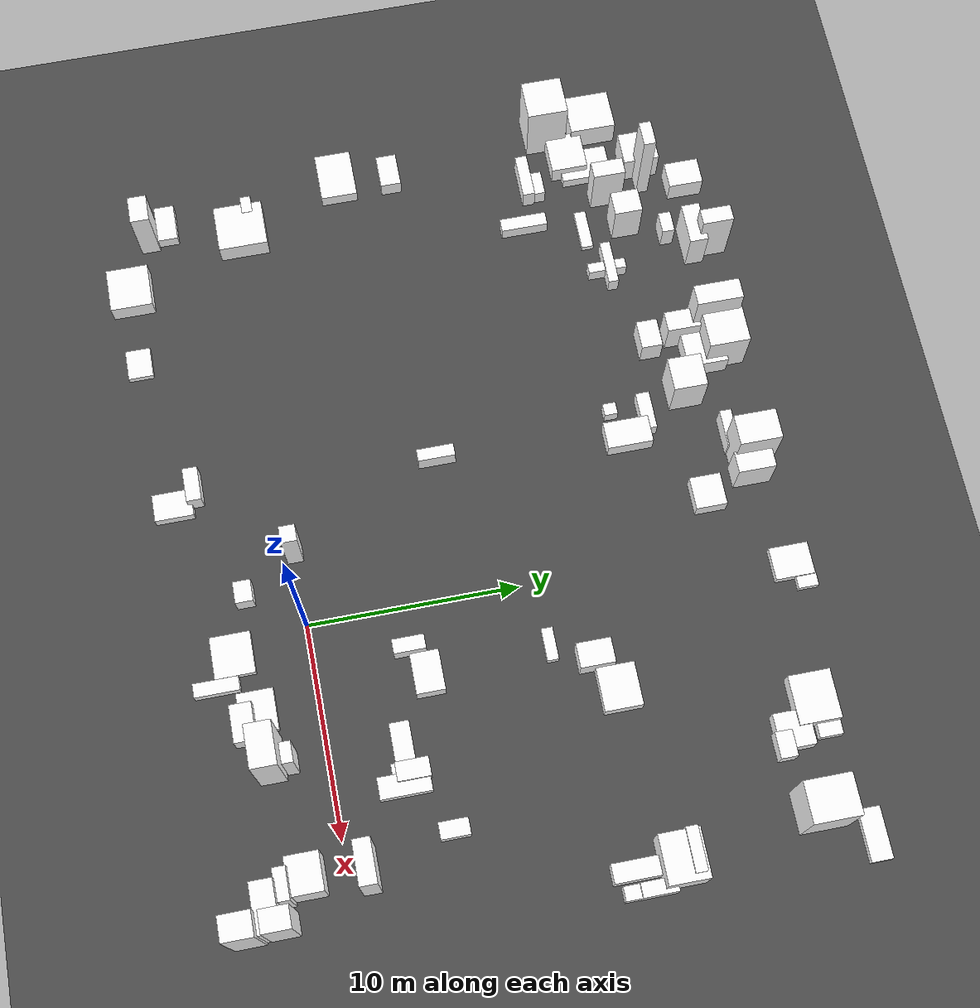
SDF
<sdf version="1.6">
 <world name="mirror_edge_world">
  <model name="ground_plane">
   <static>true</static>
   <link name="link">
    <collision name="collision">
     <geometry><plane><normal>0 0 1</normal><size>100 100</size></plane></geometry>
    </collision>
    <visual name="visual">
     <geometry><plane><normal>0 0 1</normal><size>100 100</size></plane></geometry>
     <material>
      <ambient>0.3 0.3 0.3 1</ambient>
      <diffuse>0.3 0.3 0.3 1</diffuse>
      <specular>0.5 0.5 0.5 1</specular>
      <emissive>0 0 0 1</emissive>
     </material>
    </visual>
   </link>
  </model>
  <model name="block_7_58">
   <static>true</static>
   <link name="link">
    <pose>-21.06033015444244 17.538761978867644 0.30326687604345337 0 0 0</pose>
    <collision name="collision">
     <geometry><box><size>1.625759995244621 2.465322731743232 0.6065337520869067</size></box></geometry>
    </collision>
    <visual name="visual">
     <geometry><box><size>1.625759995244621 2.465322731743232 0.6065337520869067</size></box></geometry>
     <material>
      <ambient>1 1 1 1</ambient>
      <diffuse>1 1 1 1</diffuse>
      <specular>0.9 0.9 0.9 1</specular>
      <emissive>0.05 0.05 0.05 1</emissive>
     </material>
    </visual>
   </link>
  </model>
  <model name="block_7_59">
   <static>true</static>
   <link name="link">
    <pose>-17.54556980583513 16.778838221154363 0.16070350677983264 0 0 0</pose>
    <collision name="collision">
     <geometry><box><size>1.9770694206053288 0.587388655172201 0.3214070135596653</size></box></geometry>
    </collision>
    <visual name="visual">
     <geometry><box><size>1.9770694206053288 0.587388655172201 0.3214070135596653</size></box></geometry>
     <material>
      <ambient>1 1 1 1</ambient>
      <diffuse>1 1 1 1</diffuse>
      <specular>0.9 0.9 0.9 1</specular>
      <emissive>0.05 0.05 0.05 1</emissive>
     </material>
    </visual>
   </link>
  </model>
  <model name="block_7_60">
   <static>true</static>
   <link name="link">
    <pose>-7.669405933741203 15.940293748282553 0.35034346247233045 0 0 0</pose>
    <collision name="collision">
     <geometry><box><size>0.5889284305780462 0.6428876410037321 0.7006869249446609</size></box></geometry>
    </collision>
    <visual name="visual">
     <geometry><box><size>0.5889284305780462 0.6428876410037321 0.7006869249446609</size></box></geometry>
     <material>
      <ambient>1 1 1 1</ambient>
      <diffuse>1 1 1 1</diffuse>
      <specular>0.9 0.9 0.9 1</specular>
      <emissive>0.05 0.05 0.05 1</emissive>
     </material>
    </visual>
   </link>
  </model>
  <model name="block_7_63">
   <static>true</static>
   <link name="link">
    <pose>2.1642172536936606 -4.45934224629622 0.2755101531138549 0 0 0</pose>
    <collision name="collision">
     <geometry><box><size>0.6607351352444912 2.1154882367631944 0.5510203062277098</size></box></geometry>
    </collision>
    <visual name="visual">
     <geometry><box><size>0.6607351352444912 2.1154882367631944 0.5510203062277098</size></box></geometry>
     <material>
      <ambient>1 1 1 1</ambient>
      <diffuse>1 1 1 1</diffuse>
      <specular>0.9 0.9 0.9 1</specular>
      <emissive>0.05 0.05 0.05 1</emissive>
     </material>
    </visual>
   </link>
  </model>
  <model name="block_7_67">
   <static>true</static>
   <link name="link">
    <pose>-22.706257825958794 5.064450942348505 0.3625480376320364 0 0 0</pose>
    <collision name="collision">
     <geometry><box><size>2.4138749498047227 1.7877520135115028 0.7250960752640728</size></box></geometry>
    </collision>
    <visual name="visual">
     <geometry><box><size>2.4138749498047227 1.7877520135115028 0.7250960752640728</size></box></geometry>
     <material>
      <ambient>1 1 1 1</ambient>
      <diffuse>1 1 1 1</diffuse>
      <specular>0.9 0.9 0.9 1</specular>
      <emissive>0.05 0.05 0.05 1</emissive>
     </material>
    </visual>
   </link>
  </model>
  <model name="block_8_0">
   <static>true</static>
   <link name="link">
    <pose>-5.485888372541005 21.215658091720208 0.6108630066761713 0 0 0</pose>
    <collision name="collision">
     <geometry><box><size>1.7844493487869804 0.5661374900316696 1.2217260133523427</size></box></geometry>
    </collision>
    <visual name="visual">
     <geometry><box><size>1.7844493487869804 0.5661374900316696 1.2217260133523427</size></box></geometry>
     <material>
      <ambient>1 1 1 1</ambient>
      <diffuse>1 1 1 1</diffuse>
      <specular>0.9 0.9 0.9 1</specular>
      <emissive>0.05 0.05 0.05 1</emissive>
     </material>
    </visual>
   </link>
  </model>
  <model name="block_8_1">
   <static>true</static>
   <link name="link">
    <pose>-21.649493365372386 0.4020498165986348 0.5749776957854156 0 0 0</pose>
    <collision name="collision">
     <geometry><box><size>0.87913171793895 0.5190295024334055 1.1499553915708312</size></box></geometry>
    </collision>
    <visual name="visual">
     <geometry><box><size>0.87913171793895 0.5190295024334055 1.1499553915708312</size></box></geometry>
     <material>
      <ambient>1 1 1 1</ambient>
      <diffuse>1 1 1 1</diffuse>
      <specular>0.9 0.9 0.9 1</specular>
      <emissive>0.05 0.05 0.05 1</emissive>
     </material>
    </visual>
   </link>
  </model>
  <model name="block_8_3">
   <static>true</static>
   <link name="link">
    <pose>-1.8960455958263935 -2.6005982305035884 0.5403726390003059 0 0 0</pose>
    <visual name="visual">
     <geometry><box><size>1.0254777180060313 0.8351032950524118 1.0807452780006117</size></box></geometry>
     <material>
      <ambient>1 1 1 1</ambient>
      <diffuse>1 1 1 1</diffuse>
      <specular>0.9 0.9 0.9 1</specular>
      <emissive>0.05 0.05 0.05 1</emissive>
     </material>
    </visual>
   </link>
  </model>
  <model name="block_8_4">
   <static>true</static>
   <link name="link">
    <pose>-21.643161435269956 -3.7111936031332102 0.32862811347240045 0 0 0</pose>
    <collision name="collision">
     <geometry><box><size>1.8483887764964249 0.9818259915492058 0.6572562269448009</size></box></geometry>
    </collision>
    <visual name="visual">
     <geometry><box><size>1.8483887764964249 0.9818259915492058 0.6572562269448009</size></box></geometry>
     <material>
      <ambient>1 1 1 1</ambient>
      <diffuse>1 1 1 1</diffuse>
      <specular>0.9 0.9 0.9 1</specular>
      <emissive>0.05 0.05 0.05 1</emissive>
     </material>
    </visual>
   </link>
  </model>
  <model name="block_8_5">
   <static>true</static>
   <link name="link">
    <pose>-19.252084735899473 18.21147990374171 1.5005602533736642 0 0 0</pose>
    <visual name="visual">
     <geometry><box><size>0.8143111147488564 1.5664697118280084 3.0011205067473283</size></box></geometry>
     <material>
      <ambient>1 1 1 1</ambient>
      <diffuse>1 1 1 1</diffuse>
      <specular>0.9 0.9 0.9 1</specular>
      <emissive>0.05 0.05 0.05 1</emissive>
     </material>
    </visual>
   </link>
  </model>
  <model name="block_8_8">
   <static>true</static>
   <link name="link">
    <pose>13.690819968363108 12.394343897673966 0.48807796789400304 0 0 0</pose>
    <collision name="collision">
     <geometry><box><size>0.8806580749273953 2.1317734749460695 0.9761559357880061</size></box></geometry>
    </collision>
    <visual name="visual">
     <geometry><box><size>0.8806580749273953 2.1317734749460695 0.9761559357880061</size></box></geometry>
     <material>
      <ambient>1 1 1 1</ambient>
      <diffuse>1 1 1 1</diffuse>
      <specular>0.9 0.9 0.9 1</specular>
      <emissive>0.05 0.05 0.05 1</emissive>
     </material>
    </visual>
   </link>
  </model>
  <model name="block_8_10">
   <static>true</static>
   <link name="link">
    <pose>-18.24826291678652 -5.878224167834446 0.5172888985266836 0 0 0</pose>
    <collision name="collision">
     <geometry><box><size>2.148880079933841 2.037355667564259 1.0345777970533672</size></box></geometry>
    </collision>
    <visual name="visual">
     <geometry><box><size>2.148880079933841 2.037355667564259 1.0345777970533672</size></box></geometry>
     <material>
      <ambient>1 1 1 1</ambient>
      <diffuse>1 1 1 1</diffuse>
      <specular>0.9 0.9 0.9 1</specular>
      <emissive>0.05 0.05 0.05 1</emissive>
     </material>
    </visual>
   </link>
  </model>
  <model name="block_8_11">
   <static>true</static>
   <link name="link">
    <pose>1.9451715587201655 4.449499501191025 0.4916832636157151 0 0 0</pose>
    <collision name="collision">
     <geometry><box><size>0.6833057593792504 1.5071934225685681 0.9833665272314303</size></box></geometry>
    </collision>
    <visual name="visual">
     <geometry><box><size>0.6833057593792504 1.5071934225685681 0.9833665272314303</size></box></geometry>
     <material>
      <ambient>1 1 1 1</ambient>
      <diffuse>1 1 1 1</diffuse>
      <specular>0.9 0.9 0.9 1</specular>
      <emissive>0.05 0.05 0.05 1</emissive>
     </material>
    </visual>
   </link>
  </model>
  <model name="block_8_15">
   <static>true</static>
   <link name="link">
    <pose>11.632121085247498 -2.66321434282354 1.5192065809641735 0 0 0</pose>
    <visual name="visual">
     <geometry><box><size>1.4592254457904492 0.5979256075772408 3.038413161928347</size></box></geometry>
     <material>
      <ambient>1 1 1 1</ambient>
      <diffuse>1 1 1 1</diffuse>
      <specular>0.9 0.9 0.9 1</specular>
      <emissive>0.05 0.05 0.05 1</emissive>
     </material>
    </visual>
   </link>
  </model>
  <model name="block_8_17">
   <static>true</static>
   <link name="link">
    <pose>9.012475234084398 20.690138188811236 0.45767277984421556 0 0 0</pose>
    <collision name="collision">
     <geometry><box><size>1.6594881844428953 1.6644331855509857 0.9153455596884311</size></box></geometry>
    </collision>
    <visual name="visual">
     <geometry><box><size>1.6594881844428953 1.6644331855509857 0.9153455596884311</size></box></geometry>
     <material>
      <ambient>1 1 1 1</ambient>
      <diffuse>1 1 1 1</diffuse>
      <specular>0.9 0.9 0.9 1</specular>
      <emissive>0.05 0.05 0.05 1</emissive>
     </material>
    </visual>
   </link>
  </model>
  <model name="block_8_23">
   <static>true</static>
   <link name="link">
    <pose>5.8938863468807945 -2.541279151656743 2.1555441233243493 0 0 0</pose>
    <visual name="visual">
     <geometry><box><size>1.9798583183179086 1.2147518033663975 4.311088246648699</size></box></geometry>
     <material>
      <ambient>1 1 1 1</ambient>
      <diffuse>1 1 1 1</diffuse>
      <specular>0.9 0.9 0.9 1</specular>
      <emissive>0.05 0.05 0.05 1</emissive>
     </material>
    </visual>
   </link>
  </model>
  <model name="block_8_27">
   <static>true</static>
   <link name="link">
    <pose>-14.432502479720927 -5.9673783320563185 0.1745769628918153 0 0 0</pose>
    <collision name="collision">
     <geometry><box><size>1.4811945962077728 1.2058707055097988 0.3491539257836306</size></box></geometry>
    </collision>
    <visual name="visual">
     <geometry><box><size>1.4811945962077728 1.2058707055097988 0.3491539257836306</size></box></geometry>
     <material>
      <ambient>1 1 1 1</ambient>
      <diffuse>1 1 1 1</diffuse>
      <specular>0.9 0.9 0.9 1</specular>
      <emissive>0.05 0.05 0.05 1</emissive>
     </material>
    </visual>
   </link>
  </model>
  <model name="block_8_28">
   <static>true</static>
   <link name="link">
    <pose>-19.2467030944887 22.20087099062626 0.6251450495342434 0 0 0</pose>
    <visual name="visual">
     <geometry><box><size>1.2963307791894223 1.6930579849886667 1.2502900990684869</size></box></geometry>
     <material>
      <ambient>1 1 1 1</ambient>
      <diffuse>1 1 1 1</diffuse>
      <specular>0.9 0.9 0.9 1</specular>
      <emissive>0.05 0.05 0.05 1</emissive>
     </material>
    </visual>
   </link>
  </model>
  <model name="block_8_29">
   <static>true</static>
   <link name="link">
    <pose>7.784164892695522 21.926548429066408 0.5044337039867912 0 0 0</pose>
    <collision name="collision">
     <geometry><box><size>2.280004355772046 1.9751167446071713 1.0088674079735824</size></box></geometry>
    </collision>
    <visual name="visual">
     <geometry><box><size>2.280004355772046 1.9751167446071713 1.0088674079735824</size></box></geometry>
     <material>
      <ambient>1 1 1 1</ambient>
      <diffuse>1 1 1 1</diffuse>
      <specular>0.9 0.9 0.9 1</specular>
      <emissive>0.05 0.05 0.05 1</emissive>
     </material>
    </visual>
   </link>
  </model>
  <model name="block_8_30">
   <static>true</static>
   <link name="link">
    <pose>-11.069714582900877 20.406546609452754 0.9891097047203592 0 0 0</pose>
    <visual name="visual">
     <geometry><box><size>0.9796224567633678 2.117654472166089 1.9782194094407184</size></box></geometry>
     <material>
      <ambient>1 1 1 1</ambient>
      <diffuse>1 1 1 1</diffuse>
      <specular>0.9 0.9 0.9 1</specular>
      <emissive>0.05 0.05 0.05 1</emissive>
     </material>
    </visual>
   </link>
  </model>
  <model name="block_8_34">
   <static>true</static>
   <link name="link">
    <pose>-7.509873199890368 -4.207662219200295 0.5540104491527843 0 0 0</pose>
    <collision name="collision">
     <geometry><box><size>1.6396552518474417 0.7114151318447643 1.1080208983055686</size></box></geometry>
    </collision>
    <visual name="visual">
     <geometry><box><size>1.6396552518474417 0.7114151318447643 1.1080208983055686</size></box></geometry>
     <material>
      <ambient>1 1 1 1</ambient>
      <diffuse>1 1 1 1</diffuse>
      <specular>0.9 0.9 0.9 1</specular>
      <emissive>0.05 0.05 0.05 1</emissive>
     </material>
    </visual>
   </link>
  </model>
  <model name="block_8_35">
   <static>true</static>
   <link name="link">
    <pose>-8.122387738784232 19.637903710030205 1.277889011438748 0 0 0</pose>
    <visual name="visual">
     <geometry><box><size>1.5923638940581095 1.6093378728764394 2.555778022877496</size></box></geometry>
     <material>
      <ambient>1 1 1 1</ambient>
      <diffuse>1 1 1 1</diffuse>
      <specular>0.9 0.9 0.9 1</specular>
      <emissive>0.05 0.05 0.05 1</emissive>
     </material>
    </visual>
   </link>
  </model>
  <model name="block_8_36">
   <static>true</static>
   <link name="link">
    <pose>12.568926084111695 21.006934392753006 1.666573284462865 0 0 0</pose>
    <visual name="visual">
     <geometry><box><size>1.8944820660966828 2.2121701912064107 3.33314656892573</size></box></geometry>
     <material>
      <ambient>1 1 1 1</ambient>
      <diffuse>1 1 1 1</diffuse>
      <specular>0.9 0.9 0.9 1</specular>
      <emissive>0.05 0.05 0.05 1</emissive>
     </material>
    </visual>
   </link>
  </model>
  <model name="block_8_41">
   <static>true</static>
   <link name="link">
    <pose>5.6245105619244775 13.456336522306419 0.38488391330447835 0 0 0</pose>
    <collision name="collision">
     <geometry><box><size>2.039627520463922 1.7941435145136047 0.7697678266089567</size></box></geometry>
    </collision>
    <visual name="visual">
     <geometry><box><size>2.039627520463922 1.7941435145136047 0.7697678266089567</size></box></geometry>
     <material>
      <ambient>1 1 1 1</ambient>
      <diffuse>1 1 1 1</diffuse>
      <specular>0.9 0.9 0.9 1</specular>
      <emissive>0.05 0.05 0.05 1</emissive>
     </material>
    </visual>
   </link>
  </model>
  <model name="block_8_42">
   <static>true</static>
   <link name="link">
    <pose>-20.25944231408279 14.710194722609511 0.43335585468428806 0 0 0</pose>
    <collision name="collision">
     <geometry><box><size>1.1963487594479827 1.046161536967404 0.8667117093685761</size></box></geometry>
    </collision>
    <visual name="visual">
     <geometry><box><size>1.1963487594479827 1.046161536967404 0.8667117093685761</size></box></geometry>
     <material>
      <ambient>1 1 1 1</ambient>
      <diffuse>1 1 1 1</diffuse>
      <specular>0.9 0.9 0.9 1</specular>
      <emissive>0.05 0.05 0.05 1</emissive>
     </material>
    </visual>
   </link>
  </model>
  <model name="block_8_45">
   <static>true</static>
   <link name="link">
    <pose>-23.40757959066265 15.855775784747127 1.7762809573178322 0 0 0</pose>
    <visual name="visual">
     <geometry><box><size>1.9178841146537429 1.975500494224201 3.5525619146356644</size></box></geometry>
     <material>
      <ambient>1 1 1 1</ambient>
      <diffuse>1 1 1 1</diffuse>
      <specular>0.9 0.9 0.9 1</specular>
      <emissive>0.05 0.05 0.05 1</emissive>
     </material>
    </visual>
   </link>
  </model>
  <model name="block_8_48">
   <static>true</static>
   <link name="link">
    <pose>-10.210310827539596 21.944628525498466 1.3626621839237925 0 0 0</pose>
    <visual name="visual">
     <geometry><box><size>2.187808467181866 1.9532263401332095 2.725324367847585</size></box></geometry>
     <material>
      <ambient>1 1 1 1</ambient>
      <diffuse>1 1 1 1</diffuse>
      <specular>0.9 0.9 0.9 1</specular>
      <emissive>0.05 0.05 0.05 1</emissive>
     </material>
    </visual>
   </link>
  </model>
  <model name="block_8_49">
   <static>true</static>
   <link name="link">
    <pose>12.493530303949143 -3.4262609333491274 1.8390410464955023 0 0 0</pose>
    <visual name="visual">
     <geometry><box><size>2.255088863141582 1.0362016002893404 3.6780820929910045</size></box></geometry>
     <material>
      <ambient>1 1 1 1</ambient>
      <diffuse>1 1 1 1</diffuse>
      <specular>0.9 0.9 0.9 1</specular>
      <emissive>0.05 0.05 0.05 1</emissive>
     </material>
    </visual>
   </link>
  </model>
  <model name="block_8_53">
   <static>true</static>
   <link name="link">
    <pose>-22.37256495231459 7.712657714453813 0.45137555928786166 0 0 0</pose>
    <collision name="collision">
     <geometry><box><size>1.6561676868941337 1.0074526232026475 0.9027511185757233</size></box></geometry>
    </collision>
    <visual name="visual">
     <geometry><box><size>1.6561676868941337 1.0074526232026475 0.9027511185757233</size></box></geometry>
     <material>
      <ambient>1 1 1 1</ambient>
      <diffuse>1 1 1 1</diffuse>
      <specular>0.9 0.9 0.9 1</specular>
      <emissive>0.05 0.05 0.05 1</emissive>
     </material>
    </visual>
   </link>
  </model>
  <model name="block_8_60">
   <static>true</static>
   <link name="link">
    <pose>-19.853715996721387 20.16666092623289 2.30588062812018 0 0 0</pose>
    <visual name="visual">
     <geometry><box><size>1.2196905358201713 0.5900951832285746 4.61176125624036</size></box></geometry>
     <material>
      <ambient>1 1 1 1</ambient>
      <diffuse>1 1 1 1</diffuse>
      <specular>0.9 0.9 0.9 1</specular>
      <emissive>0.05 0.05 0.05 1</emissive>
     </material>
    </visual>
   </link>
  </model>
  <model name="block_8_62">
   <static>true</static>
   <link name="link">
    <pose>-15.824314411174466 21.832036897695044 1.2054966897933517 0 0 0</pose>
    <visual name="visual">
     <geometry><box><size>1.9921573680789155 0.8953136790336251 2.4109933795867033</size></box></geometry>
     <material>
      <ambient>1 1 1 1</ambient>
      <diffuse>1 1 1 1</diffuse>
      <specular>0.9 0.9 0.9 1</specular>
      <emissive>0.05 0.05 0.05 1</emissive>
     </material>
    </visual>
   </link>
  </model>
  <model name="block_8_63">
   <static>true</static>
   <link name="link">
    <pose>6.161341260333337 -1.620307948218234 1.464227837142192 0 0 0</pose>
    <visual name="visual">
     <geometry><box><size>0.9551283524774847 0.529516989538271 2.928455674284384</size></box></geometry>
     <material>
      <ambient>1 1 1 1</ambient>
      <diffuse>1 1 1 1</diffuse>
      <specular>0.9 0.9 0.9 1</specular>
      <emissive>0.05 0.05 0.05 1</emissive>
     </material>
    </visual>
   </link>
  </model>
  <model name="block_8_66">
   <static>true</static>
   <link name="link">
    <pose>0.7990621981908781 -3.5550628798473354 0.1971436708561477 0 0 0</pose>
    <collision name="collision">
     <geometry><box><size>1.9810359583652444 1.8982526127127957 0.3942873417122954</size></box></geometry>
    </collision>
    <visual name="visual">
     <geometry><box><size>1.9810359583652444 1.8982526127127957 0.3942873417122954</size></box></geometry>
     <material>
      <ambient>1 1 1 1</ambient>
      <diffuse>1 1 1 1</diffuse>
      <specular>0.9 0.9 0.9 1</specular>
      <emissive>0.05 0.05 0.05 1</emissive>
     </material>
    </visual>
   </link>
  </model>
  <model name="block_9_1">
   <static>true</static>
   <link name="link">
    <pose>8.795254319494255 22.344705648686606 0.26311993233901715 0 0 0</pose>
    <collision name="collision">
     <geometry><box><size>1.5526728795404912 1.0999526453556976 0.5262398646780343</size></box></geometry>
    </collision>
    <visual name="visual">
     <geometry><box><size>1.5526728795404912 1.0999526453556976 0.5262398646780343</size></box></geometry>
     <material>
      <ambient>1 1 1 1</ambient>
      <diffuse>1 1 1 1</diffuse>
      <specular>0.9 0.9 0.9 1</specular>
      <emissive>0.05 0.05 0.05 1</emissive>
     </material>
    </visual>
   </link>
  </model>
  <model name="block_9_2">
   <static>true</static>
   <link name="link">
    <pose>-3.3882118832635726 21.793114301444533 1.0802110427314515 0 0 0</pose>
    <visual name="visual">
     <geometry><box><size>1.0270024517886305 1.7884358004863228 2.160422085462903</size></box></geometry>
     <material>
      <ambient>1 1 1 1</ambient>
      <diffuse>1 1 1 1</diffuse>
      <specular>0.9 0.9 0.9 1</specular>
      <emissive>0.05 0.05 0.05 1</emissive>
     </material>
    </visual>
   </link>
  </model>
  <model name="block_9_3">
   <static>true</static>
   <link name="link">
    <pose>-17.52145422042461 18.787748832034644 1.2560201559063626 0 0 0</pose>
    <visual name="visual">
     <geometry><box><size>1.1796933117631705 1.3603213886051768 2.5120403118127252</size></box></geometry>
     <material>
      <ambient>1 1 1 1</ambient>
      <diffuse>1 1 1 1</diffuse>
      <specular>0.9 0.9 0.9 1</specular>
      <emissive>0.05 0.05 0.05 1</emissive>
     </material>
    </visual>
   </link>
  </model>
  <model name="block_9_4">
   <static>true</static>
   <link name="link">
    <pose>3.0287375114962067 10.791498620200255 0.2188547062758095 0 0 0</pose>
    <collision name="collision">
     <geometry><box><size>1.5329954732136497 0.5483082149359799 0.437709412551619</size></box></geometry>
    </collision>
    <visual name="visual">
     <geometry><box><size>1.5329954732136497 0.5483082149359799 0.437709412551619</size></box></geometry>
     <material>
      <ambient>1 1 1 1</ambient>
      <diffuse>1 1 1 1</diffuse>
      <specular>0.9 0.9 0.9 1</specular>
      <emissive>0.05 0.05 0.05 1</emissive>
     </material>
    </visual>
   </link>
  </model>
  <model name="block_9_6">
   <static>true</static>
   <link name="link">
    <pose>9.607822337478865 20.157454848177434 0.4820802304409663 0 0 0</pose>
    <collision name="collision">
     <geometry><box><size>1.2185851811822306 0.80195119882457 0.9641604608819326</size></box></geometry>
    </collision>
    <visual name="visual">
     <geometry><box><size>1.2185851811822306 0.80195119882457 0.9641604608819326</size></box></geometry>
     <material>
      <ambient>1 1 1 1</ambient>
      <diffuse>1 1 1 1</diffuse>
      <specular>0.9 0.9 0.9 1</specular>
      <emissive>0.05 0.05 0.05 1</emissive>
     </material>
    </visual>
   </link>
  </model>
  <model name="block_9_8">
   <static>true</static>
   <link name="link">
    <pose>4.131260424484395 -3.461636628111319 0.598156865108531 0 0 0</pose>
    <collision name="collision">
     <geometry><box><size>1.7581399634797068 1.0240579549167776 1.196313730217062</size></box></geometry>
    </collision>
    <visual name="visual">
     <geometry><box><size>1.7581399634797068 1.0240579549167776 1.196313730217062</size></box></geometry>
     <material>
      <ambient>1 1 1 1</ambient>
      <diffuse>1 1 1 1</diffuse>
      <specular>0.9 0.9 0.9 1</specular>
      <emissive>0.05 0.05 0.05 1</emissive>
     </material>
    </visual>
   </link>
  </model>
  <model name="block_9_9">
   <static>true</static>
   <link name="link">
    <pose>11.310014054059344 -1.701297496351314 1.1815333082605606 0 0 0</pose>
    <visual name="visual">
     <geometry><box><size>1.758399737030829 1.5531738718242403 2.363066616521121</size></box></geometry>
     <material>
      <ambient>1 1 1 1</ambient>
      <diffuse>1 1 1 1</diffuse>
      <specular>0.9 0.9 0.9 1</specular>
      <emissive>0.05 0.05 0.05 1</emissive>
     </material>
    </visual>
   </link>
  </model>
  <model name="block_9_11">
   <static>true</static>
   <link name="link">
    <pose>13.42125117115836 15.006154935286645 1.0220380379475553 0 0 0</pose>
    <visual name="visual">
     <geometry><box><size>2.0018365439113883 0.5570361147849576 2.0440760758951106</size></box></geometry>
     <material>
      <ambient>1 1 1 1</ambient>
      <diffuse>1 1 1 1</diffuse>
      <specular>0.9 0.9 0.9 1</specular>
      <emissive>0.05 0.05 0.05 1</emissive>
     </material>
    </visual>
   </link>
  </model>
  <model name="block_9_12">
   <static>true</static>
   <link name="link">
    <pose>3.607031637748239 -2.806227222405933 0.2265351247145031 0 0 0</pose>
    <collision name="collision">
     <geometry><box><size>1.9409853458749977 1.7193061883850638 0.4530702494290062</size></box></geometry>
    </collision>
    <visual name="visual">
     <geometry><box><size>1.9409853458749977 1.7193061883850638 0.4530702494290062</size></box></geometry>
     <material>
      <ambient>1 1 1 1</ambient>
      <diffuse>1 1 1 1</diffuse>
      <specular>0.9 0.9 0.9 1</specular>
      <emissive>0.05 0.05 0.05 1</emissive>
     </material>
    </visual>
   </link>
  </model>
  <model name="block_9_16">
   <static>true</static>
   <link name="link">
    <pose>10.42796012242291 4.975568418643287 0.3373067340246085 0 0 0</pose>
    <collision name="collision">
     <geometry><box><size>0.7793622430589353 1.375968392509453 0.674613468049217</size></box></geometry>
    </collision>
    <visual name="visual">
     <geometry><box><size>0.7793622430589353 1.375968392509453 0.674613468049217</size></box></geometry>
     <material>
      <ambient>1 1 1 1</ambient>
      <diffuse>1 1 1 1</diffuse>
      <specular>0.9 0.9 0.9 1</specular>
      <emissive>0.05 0.05 0.05 1</emissive>
     </material>
    </visual>
   </link>
  </model>
  <model name="block_9_17">
   <static>true</static>
   <link name="link">
    <pose>-15.137925842787146 17.418121971931747 0.3910273339716834 0 0 0</pose>
    <collision name="collision">
     <geometry><box><size>0.5022441353853986 1.8788751604698428 0.7820546679433668</size></box></geometry>
    </collision>
    <visual name="visual">
     <geometry><box><size>0.5022441353853986 1.8788751604698428 0.7820546679433668</size></box></geometry>
     <material>
      <ambient>1 1 1 1</ambient>
      <diffuse>1 1 1 1</diffuse>
      <specular>0.9 0.9 0.9 1</specular>
      <emissive>0.05 0.05 0.05 1</emissive>
     </material>
    </visual>
   </link>
  </model>
  <model name="block_9_18">
   <static>true</static>
   <link name="link">
    <pose>-9.873070284891702 21.01416827600062 0.6125335355239034 0 0 0</pose>
    <visual name="visual">
     <geometry><box><size>1.969837307322758 1.979350065324397 1.2250670710478069</size></box></geometry>
     <material>
      <ambient>1 1 1 1</ambient>
      <diffuse>1 1 1 1</diffuse>
      <specular>0.9 0.9 0.9 1</specular>
      <emissive>0.05 0.05 0.05 1</emissive>
     </material>
    </visual>
   </link>
  </model>
  <model name="block_9_19">
   <static>true</static>
   <link name="link">
    <pose>-6.264836219509611 16.490591567970768 0.47191625793849384 0 0 0</pose>
    <collision name="collision">
     <geometry><box><size>1.3038861287787042 2.187035359496642 0.9438325158769877</size></box></geometry>
    </collision>
    <visual name="visual">
     <geometry><box><size>1.3038861287787042 2.187035359496642 0.9438325158769877</size></box></geometry>
     <material>
      <ambient>1 1 1 1</ambient>
      <diffuse>1 1 1 1</diffuse>
      <specular>0.9 0.9 0.9 1</specular>
      <emissive>0.05 0.05 0.05 1</emissive>
     </material>
    </visual>
   </link>
  </model>
  <model name="block_9_20">
   <static>true</static>
   <link name="link">
    <pose>-15.521768147254223 22.730552641283328 1.7094919713556151 0 0 0</pose>
    <visual name="visual">
     <geometry><box><size>0.7742803238661544 1.5091738898433862 3.4189839427112303</size></box></geometry>
     <material>
      <ambient>1 1 1 1</ambient>
      <diffuse>1 1 1 1</diffuse>
      <specular>0.9 0.9 0.9 1</specular>
      <emissive>0.05 0.05 0.05 1</emissive>
     </material>
    </visual>
   </link>
  </model>
  <model name="block_9_23">
   <static>true</static>
   <link name="link">
    <pose>-21.183281076222734 -4.652267140651511 1.634179649603723 0 0 0</pose>
    <visual name="visual">
     <geometry><box><size>1.3336786722270448 0.9081226071462458 3.268359299207446</size></box></geometry>
     <material>
      <ambient>1 1 1 1</ambient>
      <diffuse>1 1 1 1</diffuse>
      <specular>0.9 0.9 0.9 1</specular>
      <emissive>0.05 0.05 0.05 1</emissive>
     </material>
    </visual>
   </link>
  </model>
  <model name="block_9_25">
   <static>true</static>
   <link name="link">
    <pose>-16.6359442566167 20.712320791522025 0.6931138287130623 0 0 0</pose>
    <visual name="visual">
     <geometry><box><size>1.0320343413101511 0.6099758105790254 1.3862276574261245</size></box></geometry>
     <material>
      <ambient>1 1 1 1</ambient>
      <diffuse>1 1 1 1</diffuse>
      <specular>0.9 0.9 0.9 1</specular>
      <emissive>0.05 0.05 0.05 1</emissive>
     </material>
    </visual>
   </link>
  </model>
  <model name="block_9_26">
   <static>true</static>
   <link name="link">
    <pose>-3.515579175528771 -0.035194600354244265 1.6305052402019573 0 0 0</pose>
    <visual name="visual">
     <geometry><box><size>0.7856101348092082 0.7525402903346319 3.2610104804039146</size></box></geometry>
     <material>
      <ambient>1 1 1 1</ambient>
      <diffuse>1 1 1 1</diffuse>
      <specular>0.9 0.9 0.9 1</specular>
      <emissive>0.05 0.05 0.05 1</emissive>
     </material>
    </visual>
   </link>
  </model>
  <model name="block_9_31">
   <static>true</static>
   <link name="link">
    <pose>-7.210479835047547 17.596881758478986 0.4332396528929936 0 0 0</pose>
    <collision name="collision">
     <geometry><box><size>1.838683469953285 0.6650242362247101 0.8664793057859872</size></box></geometry>
    </collision>
    <visual name="visual">
     <geometry><box><size>1.838683469953285 0.6650242362247101 0.8664793057859872</size></box></geometry>
     <material>
      <ambient>1 1 1 1</ambient>
      <diffuse>1 1 1 1</diffuse>
      <specular>0.9 0.9 0.9 1</specular>
      <emissive>0.05 0.05 0.05 1</emissive>
     </material>
    </visual>
   </link>
  </model>
  <model name="block_9_39">
   <static>true</static>
   <link name="link">
    <pose>14.600523855733755 12.146823756390447 0.4034995961836166 0 0 0</pose>
    <collision name="collision">
     <geometry><box><size>0.6541241839590402 0.9554132637175576 0.8069991923672332</size></box></geometry>
    </collision>
    <visual name="visual">
     <geometry><box><size>0.6541241839590402 0.9554132637175576 0.8069991923672332</size></box></geometry>
     <material>
      <ambient>1 1 1 1</ambient>
      <diffuse>1 1 1 1</diffuse>
      <specular>0.9 0.9 0.9 1</specular>
      <emissive>0.05 0.05 0.05 1</emissive>
     </material>
    </visual>
   </link>
  </model>
  <model name="block_9_43">
   <static>true</static>
   <link name="link">
    <pose>7.519573473795742 3.6432126618486036 0.36950287126486314 0 0 0</pose>
    <collision name="collision">
     <geometry><box><size>0.8927130136467349 1.5492962127882008 0.7390057425297263</size></box></geometry>
    </collision>
    <visual name="visual">
     <geometry><box><size>0.8927130136467349 1.5492962127882008 0.7390057425297263</size></box></geometry>
     <material>
      <ambient>1 1 1 1</ambient>
      <diffuse>1 1 1 1</diffuse>
      <specular>0.9 0.9 0.9 1</specular>
      <emissive>0.05 0.05 0.05 1</emissive>
     </material>
    </visual>
   </link>
  </model>
  <model name="block_9_45">
   <static>true</static>
   <link name="link">
    <pose>11.480206617954813 0.9875199901165486 1.9183245093487022 0 0 0</pose>
    <visual name="visual">
     <geometry><box><size>1.9976383233372508 0.8084483507447058 3.8366490186974045</size></box></geometry>
     <material>
      <ambient>1 1 1 1</ambient>
      <diffuse>1 1 1 1</diffuse>
      <specular>0.9 0.9 0.9 1</specular>
      <emissive>0.05 0.05 0.05 1</emissive>
     </material>
    </visual>
   </link>
  </model>
  <model name="block_9_46">
   <static>true</static>
   <link name="link">
    <pose>-20.554784742295432 -0.048110401876945375 0.571192246685492 0 0 0</pose>
    <collision name="collision">
     <geometry><box><size>2.3235435227680896 2.3992145959284623 1.142384493370984</size></box></geometry>
    </collision>
    <visual name="visual">
     <geometry><box><size>2.3235435227680896 2.3992145959284623 1.142384493370984</size></box></geometry>
     <material>
      <ambient>1 1 1 1</ambient>
      <diffuse>1 1 1 1</diffuse>
      <specular>0.9 0.9 0.9 1</specular>
      <emissive>0.05 0.05 0.05 1</emissive>
     </material>
    </visual>
   </link>
  </model>
  <model name="block_9_47">
   <static>true</static>
   <link name="link">
    <pose>-4.479799058185865 21.996065161255427 1.7299983748076209 0 0 0</pose>
    <visual name="visual">
     <geometry><box><size>1.4295452730473013 1.9986904757580486 3.4599967496152417</size></box></geometry>
     <material>
      <ambient>1 1 1 1</ambient>
      <diffuse>1 1 1 1</diffuse>
      <specular>0.9 0.9 0.9 1</specular>
      <emissive>0.05 0.05 0.05 1</emissive>
     </material>
    </visual>
   </link>
  </model>
  <model name="block_9_48">
   <static>true</static>
   <link name="link">
    <pose>-11.280322984374346 21.713202600656544 1.9676354703717864 0 0 0</pose>
    <visual name="visual">
     <geometry><box><size>0.9776061621950891 2.2110988144272063 3.935270940743573</size></box></geometry>
     <material>
      <ambient>1 1 1 1</ambient>
      <diffuse>1 1 1 1</diffuse>
      <specular>0.9 0.9 0.9 1</specular>
      <emissive>0.05 0.05 0.05 1</emissive>
     </material>
    </visual>
   </link>
  </model>
  <model name="block_9_49">
   <static>true</static>
   <link name="link">
    <pose>-10.848242758506963 18.52179452491212 0.7366471097539999 0 0 0</pose>
    <visual name="visual">
     <geometry><box><size>1.3809879726836196 1.0182876663370026 1.4732942195079999</size></box></geometry>
     <material>
      <ambient>1 1 1 1</ambient>
      <diffuse>1 1 1 1</diffuse>
      <specular>0.9 0.9 0.9 1</specular>
      <emissive>0.05 0.05 0.05 1</emissive>
     </material>
    </visual>
   </link>
  </model>
  <model name="block_9_51">
   <static>true</static>
   <link name="link">
    <pose>3.3613601787938627 5.057611019185454 0.47720885695656734 0 0 0</pose>
    <collision name="collision">
     <geometry><box><size>1.895801885033239 1.348735789313494 0.9544177139131347</size></box></geometry>
    </collision>
    <visual name="visual">
     <geometry><box><size>1.895801885033239 1.348735789313494 0.9544177139131347</size></box></geometry>
     <material>
      <ambient>1 1 1 1</ambient>
      <diffuse>1 1 1 1</diffuse>
      <specular>0.9 0.9 0.9 1</specular>
      <emissive>0.05 0.05 0.05 1</emissive>
     </material>
    </visual>
   </link>
  </model>
  <model name="block_9_52">
   <static>true</static>
   <link name="link">
    <pose>8.087632498454589 3.163861858974843 0.28567187527578797 0 0 0</pose>
    <collision name="collision">
     <geometry><box><size>1.0105778761085167 2.3945890017674563 0.5713437505515759</size></box></geometry>
    </collision>
    <visual name="visual">
     <geometry><box><size>1.0105778761085167 2.3945890017674563 0.5713437505515759</size></box></geometry>
     <material>
      <ambient>1 1 1 1</ambient>
      <diffuse>1 1 1 1</diffuse>
      <specular>0.9 0.9 0.9 1</specular>
      <emissive>0.05 0.05 0.05 1</emissive>
     </material>
    </visual>
   </link>
  </model>
  <model name="block_9_53">
   <static>true</static>
   <link name="link">
    <pose>-17.413208919834723 18.819186812713316 1.1638073886984615 0 0 0</pose>
    <visual name="visual">
     <geometry><box><size>0.6526697448986674 0.6679946581366991 2.327614777396923</size></box></geometry>
     <material>
      <ambient>1 1 1 1</ambient>
      <diffuse>1 1 1 1</diffuse>
      <specular>0.9 0.9 0.9 1</specular>
      <emissive>0.05 0.05 0.05 1</emissive>
     </material>
    </visual>
   </link>
  </model>
  <model name="block_9_57">
   <static>true</static>
   <link name="link">
    <pose>1.2785887543536276 22.63427472430037 0.24382504004347821 0 0 0</pose>
    <collision name="collision">
     <geometry><box><size>1.5395474466914532 1.865247604073735 0.48765008008695643</size></box></geometry>
    </collision>
    <visual name="visual">
     <geometry><box><size>1.5395474466914532 1.865247604073735 0.48765008008695643</size></box></geometry>
     <material>
      <ambient>1 1 1 1</ambient>
      <diffuse>1 1 1 1</diffuse>
      <specular>0.9 0.9 0.9 1</specular>
      <emissive>0.05 0.05 0.05 1</emissive>
     </material>
    </visual>
   </link>
  </model>
  <model name="block_9_60">
   <static>true</static>
   <link name="link">
    <pose>-6.820401854950269 -5.277298304805146 0.2908105334496619 0 0 0</pose>
    <collision name="collision">
     <geometry><box><size>1.3077707439794806 1.8407435978605646 0.5816210668993238</size></box></geometry>
    </collision>
    <visual name="visual">
     <geometry><box><size>1.3077707439794806 1.8407435978605646 0.5816210668993238</size></box></geometry>
     <material>
      <ambient>1 1 1 1</ambient>
      <diffuse>1 1 1 1</diffuse>
      <specular>0.9 0.9 0.9 1</specular>
      <emissive>0.05 0.05 0.05 1</emissive>
     </material>
    </visual>
   </link>
  </model>
  <model name="block_9_64">
   <static>true</static>
   <link name="link">
    <pose>-15.233936077261575 17.54576682072748 0.4730124987868212 0 0 0</pose>
    <collision name="collision">
     <geometry><box><size>2.169103737133418 0.5014093862955706 0.9460249975736424</size></box></geometry>
    </collision>
    <visual name="visual">
     <geometry><box><size>2.169103737133418 0.5014093862955706 0.9460249975736424</size></box></geometry>
     <material>
      <ambient>1 1 1 1</ambient>
      <diffuse>1 1 1 1</diffuse>
      <specular>0.9 0.9 0.9 1</specular>
      <emissive>0.05 0.05 0.05 1</emissive>
     </material>
    </visual>
   </link>
  </model>
  <model name="block_9_66">
   <static>true</static>
   <link name="link">
    <pose>13.120023327937552 -3.0166084248961518 2.08848325698992 0 0 0</pose>
    <visual name="visual">
     <geometry><box><size>1.026500909814485 1.3205570725040954 4.17696651397984</size></box></geometry>
     <material>
      <ambient>1 1 1 1</ambient>
      <diffuse>1 1 1 1</diffuse>
      <specular>0.9 0.9 0.9 1</specular>
      <emissive>0.05 0.05 0.05 1</emissive>
     </material>
    </visual>
   </link>
  </model>
  <model name="block_9_67">
   <static>true</static>
   <link name="link">
    <pose>-23.433398088149755 18.25683515679576 0.7433193249861456 0 0 0</pose>
    <visual name="visual">
     <geometry><box><size>1.9750138689111767 2.2447318717807647 1.4866386499722912</size></box></geometry>
     <material>
      <ambient>1 1 1 1</ambient>
      <diffuse>1 1 1 1</diffuse>
      <specular>0.9 0.9 0.9 1</specular>
      <emissive>0.05 0.05 0.05 1</emissive>
     </material>
    </visual>
   </link>
  </model>
  <model name="block_10_0">
   <static>true</static>
   <link name="link">
    <pose>-6.933118662103926 7.321476179693836 0.5224771049995847 0 0 0</pose>
    <collision name="collision">
     <geometry><box><size>0.5865618187954877 1.7838261385601972 1.0449542099991693</size></box></geometry>
    </collision>
    <visual name="visual">
     <geometry><box><size>0.5865618187954877 1.7838261385601972 1.0449542099991693</size></box></geometry>
     <material>
      <ambient>1 1 1 1</ambient>
      <diffuse>1 1 1 1</diffuse>
      <specular>0.9 0.9 0.9 1</specular>
      <emissive>0.05 0.05 0.05 1</emissive>
     </material>
    </visual>
   </link>
  </model>
  <model name="block_10_1">
   <static>true</static>
   <link name="link">
    <pose>-18.30700416979798 13.858029359596802 0.3772750958284555 0 0 0</pose>
    <collision name="collision">
     <geometry><box><size>0.6515566849238654 2.297161419741868 0.754550191656911</size></box></geometry>
    </collision>
    <visual name="visual">
     <geometry><box><size>0.6515566849238654 2.297161419741868 0.754550191656911</size></box></geometry>
     <material>
      <ambient>1 1 1 1</ambient>
      <diffuse>1 1 1 1</diffuse>
      <specular>0.9 0.9 0.9 1</specular>
      <emissive>0.05 0.05 0.05 1</emissive>
     </material>
    </visual>
   </link>
  </model>
  <model name="block_10_2">
   <static>true</static>
   <link name="link">
    <pose>-2.679560915562508 19.55126793939116 0.4426204993111804 0 0 0</pose>
    <collision name="collision">
     <geometry><box><size>1.5533718158153507 1.488305011738782 0.8852409986223608</size></box></geometry>
    </collision>
    <visual name="visual">
     <geometry><box><size>1.5533718158153507 1.488305011738782 0.8852409986223608</size></box></geometry>
     <material>
      <ambient>1 1 1 1</ambient>
      <diffuse>1 1 1 1</diffuse>
      <specular>0.9 0.9 0.9 1</specular>
      <emissive>0.05 0.05 0.05 1</emissive>
     </material>
    </visual>
   </link>
  </model>
  <model name="block_10_4">
   <static>true</static>
   <link name="link">
    <pose>13.149422028860982 -4.57756233246575 2.3269798223813853 0 0 0</pose>
    <visual name="visual">
     <geometry><box><size>1.140010173724463 1.4182326387448185 4.653959644762771</size></box></geometry>
     <material>
      <ambient>1 1 1 1</ambient>
      <diffuse>1 1 1 1</diffuse>
      <specular>0.9 0.9 0.9 1</specular>
      <emissive>0.05 0.05 0.05 1</emissive>
     </material>
    </visual>
   </link>
  </model>
  <model name="block_10_5">
   <static>true</static>
   <link name="link">
    <pose>14.602515551152372 13.235204572565188 0.4894600107340804 0 0 0</pose>
    <collision name="collision">
     <geometry><box><size>0.6702144432259565 1.639316682946633 0.9789200214681608</size></box></geometry>
    </collision>
    <visual name="visual">
     <geometry><box><size>0.6702144432259565 1.639316682946633 0.9789200214681608</size></box></geometry>
     <material>
      <ambient>1 1 1 1</ambient>
      <diffuse>1 1 1 1</diffuse>
      <specular>0.9 0.9 0.9 1</specular>
      <emissive>0.05 0.05 0.05 1</emissive>
     </material>
    </visual>
   </link>
  </model>
  <model name="block_10_7">
   <static>true</static>
   <link name="link">
    <pose>14.124542829231366 23.125837520507307 0.21327110398762655 0 0 0</pose>
    <collision name="collision">
     <geometry><box><size>2.355304816389843 1.0083732643664984 0.4265422079752531</size></box></geometry>
    </collision>
    <visual name="visual">
     <geometry><box><size>2.355304816389843 1.0083732643664984 0.4265422079752531</size></box></geometry>
     <material>
      <ambient>1 1 1 1</ambient>
      <diffuse>1 1 1 1</diffuse>
      <specular>0.9 0.9 0.9 1</specular>
      <emissive>0.05 0.05 0.05 1</emissive>
     </material>
    </visual>
   </link>
  </model>
  <model name="block_10_8">
   <static>true</static>
   <link name="link">
    <pose>2.265862091886749 23.130609465423852 0.19051930382303195 0 0 0</pose>
    <collision name="collision">
     <geometry><box><size>0.6997764935900033 0.9649743653741663 0.3810386076460639</size></box></geometry>
    </collision>
    <visual name="visual">
     <geometry><box><size>0.6997764935900033 0.9649743653741663 0.3810386076460639</size></box></geometry>
     <material>
      <ambient>1 1 1 1</ambient>
      <diffuse>1 1 1 1</diffuse>
      <specular>0.9 0.9 0.9 1</specular>
      <emissive>0.05 0.05 0.05 1</emissive>
     </material>
    </visual>
   </link>
  </model>
  <model name="block_10_10">
   <static>true</static>
   <link name="link">
    <pose>-20.91197178952646 20.218514881233176 0.8441895934073715 0 0 0</pose>
    <visual name="visual">
     <geometry><box><size>1.6136609022615278 1.7645836845157368 1.688379186814743</size></box></geometry>
     <material>
      <ambient>1 1 1 1</ambient>
      <diffuse>1 1 1 1</diffuse>
      <specular>0.9 0.9 0.9 1</specular>
      <emissive>0.05 0.05 0.05 1</emissive>
     </material>
    </visual>
   </link>
  </model>
  <model name="block_10_13">
   <static>true</static>
   <link name="link">
    <pose>3.9975639229726703 12.676468611746579 0.6098244410612927 0 0 0</pose>
    <collision name="collision">
     <geometry><box><size>1.1699280479083485 1.6402397057015508 1.2196488821225855</size></box></geometry>
    </collision>
    <visual name="visual">
     <geometry><box><size>1.1699280479083485 1.6402397057015508 1.2196488821225855</size></box></geometry>
     <material>
      <ambient>1 1 1 1</ambient>
      <diffuse>1 1 1 1</diffuse>
      <specular>0.9 0.9 0.9 1</specular>
      <emissive>0.05 0.05 0.05 1</emissive>
     </material>
    </visual>
   </link>
  </model>
  <model name="block_10_17">
   <static>true</static>
   <link name="link">
    <pose>-20.673769223647447 14.389073799039554 0.5510446722873259 0 0 0</pose>
    <collision name="collision">
     <geometry><box><size>2.172107073801343 0.5911708401117473 1.1020893445746518</size></box></geometry>
    </collision>
    <visual name="visual">
     <geometry><box><size>2.172107073801343 0.5911708401117473 1.1020893445746518</size></box></geometry>
     <material>
      <ambient>1 1 1 1</ambient>
      <diffuse>1 1 1 1</diffuse>
      <specular>0.9 0.9 0.9 1</specular>
      <emissive>0.05 0.05 0.05 1</emissive>
     </material>
    </visual>
   </link>
  </model>
  <model name="block_10_25">
   <static>true</static>
   <link name="link">
    <pose>6.3834718353021955 3.3742663113782987 0.2144018009000837 0 0 0</pose>
    <collision name="collision">
     <geometry><box><size>2.245648290470601 0.9256771594481545 0.4288036018001674</size></box></geometry>
    </collision>
    <visual name="visual">
     <geometry><box><size>2.245648290470601 0.9256771594481545 0.4288036018001674</size></box></geometry>
     <material>
      <ambient>1 1 1 1</ambient>
      <diffuse>1 1 1 1</diffuse>
      <specular>0.9 0.9 0.9 1</specular>
      <emissive>0.05 0.05 0.05 1</emissive>
     </material>
    </visual>
   </link>
  </model>
  <model name="block_10_30">
   <static>true</static>
   <link name="link">
    <pose>-21.666917961848153 16.706066972060945 0.5165610918901057 0 0 0</pose>
    <collision name="collision">
     <geometry><box><size>1.9388919014661934 1.787228012095379 1.0331221837802114</size></box></geometry>
    </collision>
    <visual name="visual">
     <geometry><box><size>1.9388919014661934 1.787228012095379 1.0331221837802114</size></box></geometry>
     <material>
      <ambient>1 1 1 1</ambient>
      <diffuse>1 1 1 1</diffuse>
      <specular>0.9 0.9 0.9 1</specular>
      <emissive>0.05 0.05 0.05 1</emissive>
     </material>
    </visual>
   </link>
  </model>
  <model name="block_10_32">
   <static>true</static>
   <link name="link">
    <pose>7.614350025862102 3.3782310020487403 0.19826778664265204 0 0 0</pose>
    <collision name="collision">
     <geometry><box><size>1.077928007508475 1.3933474981237812 0.3965355732853041</size></box></geometry>
    </collision>
    <visual name="visual">
     <geometry><box><size>1.077928007508475 1.3933474981237812 0.3965355732853041</size></box></geometry>
     <material>
      <ambient>1 1 1 1</ambient>
      <diffuse>1 1 1 1</diffuse>
      <specular>0.9 0.9 0.9 1</specular>
      <emissive>0.05 0.05 0.05 1</emissive>
     </material>
    </visual>
   </link>
  </model>
  <model name="block_10_35">
   <static>true</static>
   <link name="link">
    <pose>13.611012342639306 14.440639790636883 0.9705005454182345 0 0 0</pose>
    <visual name="visual">
     <geometry><box><size>2.2473269334434014 1.9098692980013225 1.941001090836469</size></box></geometry>
     <material>
      <ambient>1 1 1 1</ambient>
      <diffuse>1 1 1 1</diffuse>
      <specular>0.9 0.9 0.9 1</specular>
      <emissive>0.05 0.05 0.05 1</emissive>
     </material>
    </visual>
   </link>
  </model>
 </world>
</sdf>
